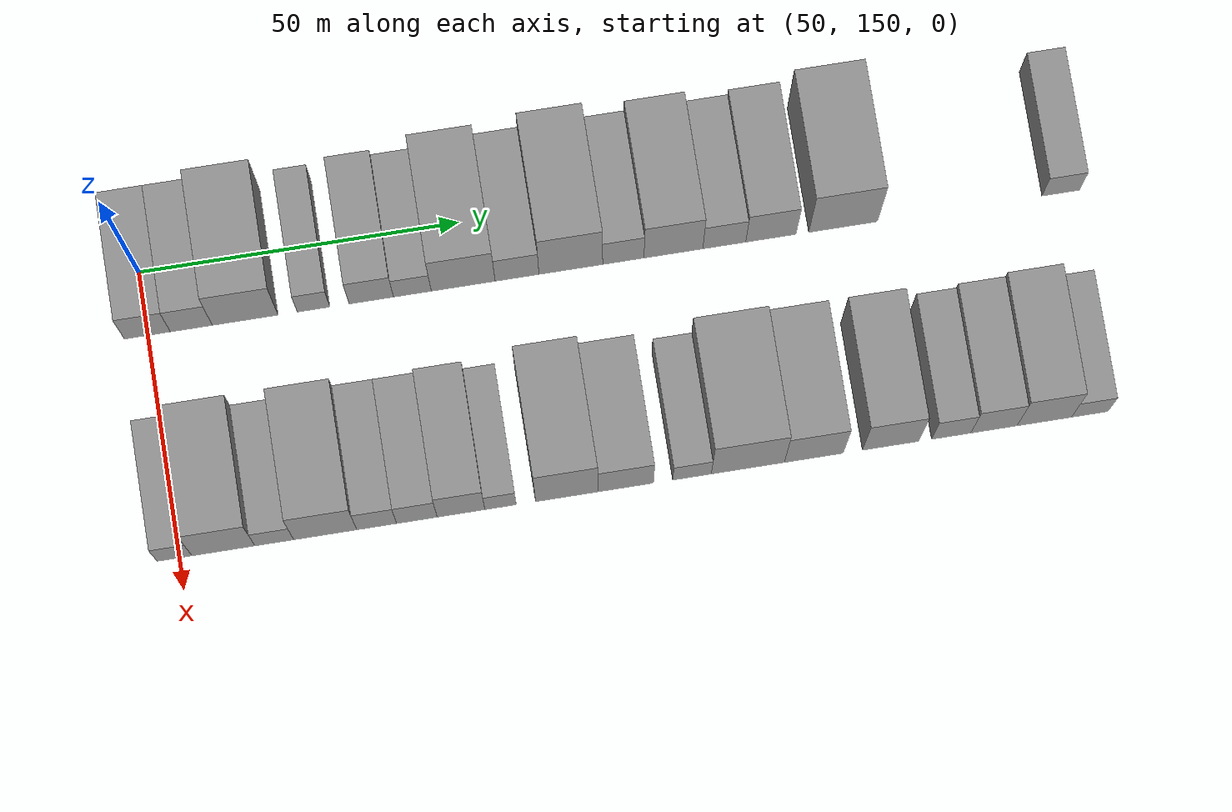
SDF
<sdf version="1.6">
 <world name="default">
  <model name="building_51">
   <static>1</static>
   <pose>50.0000 149.8587 0 0.000000 0.000000 0.000000</pose>
   <link name="link">
    <pose>0 0 7.50 0 0 0</pose>
    <collision name="collision"><geometry><box><size>20.0000 7.1651 15.0000</size></box></geometry></collision>
    <visual name="visual">
     <cast_shadows>0</cast_shadows>
     <geometry><box><size>20.0000 7.1651 15.0000</size></box></geometry>
     <material>
      <script>
       <uri>model://grey_wall/materials/scripts</uri>
       <uri>model://grey_wall/materials/textures</uri>
       <name>vrc/grey_wall</name>
      </script>
     </material>
    </visual>
   </link>
  </model>
  <model name="building_52">
   <static>1</static>
   <pose>50.0000 156.7073 0 0.000000 0.000000 0.000000</pose>
   <link name="link">
    <pose>0 0 7.50 0 0 0</pose>
    <collision name="collision"><geometry><box><size>20.0000 6.5321 15.0000</size></box></geometry></collision>
    <visual name="visual">
     <cast_shadows>0</cast_shadows>
     <geometry><box><size>20.0000 6.5321 15.0000</size></box></geometry>
     <material>
      <script>
       <uri>model://grey_wall/materials/scripts</uri>
       <uri>model://grey_wall/materials/textures</uri>
       <name>vrc/grey_wall</name>
      </script>
     </material>
    </visual>
   </link>
  </model>
  <model name="building_53">
   <static>1</static>
   <pose>50.0000 165.1053 0 0.000000 0.000000 0.000000</pose>
   <link name="link">
    <pose>0 0 10.50 0 0 0</pose>
    <collision name="collision"><geometry><box><size>20.0000 10.2638 21.0000</size></box></geometry></collision>
    <visual name="visual">
     <cast_shadows>0</cast_shadows>
     <geometry><box><size>20.0000 10.2638 21.0000</size></box></geometry>
     <material>
      <script>
       <uri>model://grey_wall/materials/scripts</uri>
       <uri>model://grey_wall/materials/textures</uri>
       <name>vrc/grey_wall</name>
      </script>
     </material>
    </visual>
   </link>
  </model>
  <model name="building_54">
   <static>1</static>
   <pose>50.0000 175.7789 0 0.000000 0.000000 0.000000</pose>
   <link name="link">
    <pose>0 0 6.00 0 0 0</pose>
    <collision name="collision"><geometry><box><size>20.0000 5.0835 12.0000</size></box></geometry></collision>
    <visual name="visual">
     <cast_shadows>0</cast_shadows>
     <geometry><box><size>20.0000 5.0835 12.0000</size></box></geometry>
     <material>
      <script>
       <uri>model://grey_wall/materials/scripts</uri>
       <uri>model://grey_wall/materials/textures</uri>
       <name>vrc/grey_wall</name>
      </script>
     </material>
    </visual>
   </link>
  </model>
  <model name="building_55">
   <static>1</static>
   <pose>50.0000 184.7896 0 0.000000 0.000000 0.000000</pose>
   <link name="link">
    <pose>0 0 7.50 0 0 0</pose>
    <collision name="collision"><geometry><box><size>20.0000 6.9380 15.0000</size></box></geometry></collision>
    <visual name="visual">
     <cast_shadows>0</cast_shadows>
     <geometry><box><size>20.0000 6.9380 15.0000</size></box></geometry>
     <material>
      <script>
       <uri>model://grey_wall/materials/scripts</uri>
       <uri>model://grey_wall/materials/textures</uri>
       <name>vrc/grey_wall</name>
      </script>
     </material>
    </visual>
   </link>
  </model>
  <model name="building_56">
   <static>1</static>
   <pose>50.0000 191.2132 0 0.000000 0.000000 0.000000</pose>
   <link name="link">
    <pose>0 0 6.00 0 0 0</pose>
    <collision name="collision"><geometry><box><size>20.0000 5.9091 12.0000</size></box></geometry></collision>
    <visual name="visual">
     <cast_shadows>0</cast_shadows>
     <geometry><box><size>20.0000 5.9091 12.0000</size></box></geometry>
     <material>
      <script>
       <uri>model://grey_wall/materials/scripts</uri>
       <uri>model://grey_wall/materials/textures</uri>
       <name>vrc/grey_wall</name>
      </script>
     </material>
    </visual>
   </link>
  </model>
  <model name="building_57">
   <static>1</static>
   <pose>50.0000 199.1576 0 0.000000 0.000000 0.000000</pose>
   <link name="link">
    <pose>0 0 10.50 0 0 0</pose>
    <collision name="collision"><geometry><box><size>20.0000 9.9797 21.0000</size></box></geometry></collision>
    <visual name="visual">
     <cast_shadows>0</cast_shadows>
     <geometry><box><size>20.0000 9.9797 21.0000</size></box></geometry>
     <material>
      <script>
       <uri>model://grey_wall/materials/scripts</uri>
       <uri>model://grey_wall/materials/textures</uri>
       <name>vrc/grey_wall</name>
      </script>
     </material>
    </visual>
   </link>
  </model>
  <model name="building_58">
   <static>1</static>
   <pose>50.0000 207.5786 0 0.000000 0.000000 0.000000</pose>
   <link name="link">
    <pose>0 0 7.50 0 0 0</pose>
    <collision name="collision"><geometry><box><size>20.0000 6.8624 15.0000</size></box></geometry></collision>
    <visual name="visual">
     <cast_shadows>0</cast_shadows>
     <geometry><box><size>20.0000 6.8624 15.0000</size></box></geometry>
     <material>
      <script>
       <uri>model://grey_wall/materials/scripts</uri>
       <uri>model://grey_wall/materials/textures</uri>
       <name>vrc/grey_wall</name>
      </script>
     </material>
    </visual>
   </link>
  </model>
  <model name="building_59">
   <static>1</static>
   <pose>50.0000 215.9971 0 0.000000 0.000000 0.000000</pose>
   <link name="link">
    <pose>0 0 12.00 0 0 0</pose>
    <collision name="collision"><geometry><box><size>20.0000 9.9745 24.0000</size></box></geometry></collision>
    <visual name="visual">
     <cast_shadows>0</cast_shadows>
     <geometry><box><size>20.0000 9.9745 24.0000</size></box></geometry>
     <material>
      <script>
       <uri>model://grey_wall/materials/scripts</uri>
       <uri>model://grey_wall/materials/textures</uri>
       <name>vrc/grey_wall</name>
      </script>
     </material>
    </visual>
   </link>
  </model>
  <model name="building_60">
   <static>1</static>
   <pose>50.0000 224.2173 0 0.000000 0.000000 0.000000</pose>
   <link name="link">
    <pose>0 0 7.50 0 0 0</pose>
    <collision name="collision"><geometry><box><size>20.0000 6.4659 15.0000</size></box></geometry></collision>
    <visual name="visual">
     <cast_shadows>0</cast_shadows>
     <geometry><box><size>20.0000 6.4659 15.0000</size></box></geometry>
     <material>
      <script>
       <uri>model://grey_wall/materials/scripts</uri>
       <uri>model://grey_wall/materials/textures</uri>
       <name>vrc/grey_wall</name>
      </script>
     </material>
    </visual>
   </link>
  </model>
  <model name="building_61">
   <static>1</static>
   <pose>50.0000 232.0735 0 0.000000 0.000000 0.000000</pose>
   <link name="link">
    <pose>0 0 10.50 0 0 0</pose>
    <collision name="collision"><geometry><box><size>20.0000 9.2464 21.0000</size></box></geometry></collision>
    <visual name="visual">
     <cast_shadows>0</cast_shadows>
     <geometry><box><size>20.0000 9.2464 21.0000</size></box></geometry>
     <material>
      <script>
       <uri>model://grey_wall/materials/scripts</uri>
       <uri>model://grey_wall/materials/textures</uri>
       <name>vrc/grey_wall</name>
      </script>
     </material>
    </visual>
   </link>
  </model>
  <model name="building_62">
   <static>1</static>
   <pose>50.0000 240.0651 0 0.000000 0.000000 0.000000</pose>
   <link name="link">
    <pose>0 0 7.50 0 0 0</pose>
    <collision name="collision"><geometry><box><size>20.0000 6.7368 15.0000</size></box></geometry></collision>
    <visual name="visual">
     <cast_shadows>0</cast_shadows>
     <geometry><box><size>20.0000 6.7368 15.0000</size></box></geometry>
     <material>
      <script>
       <uri>model://grey_wall/materials/scripts</uri>
       <uri>model://grey_wall/materials/textures</uri>
       <name>vrc/grey_wall</name>
      </script>
     </material>
    </visual>
   </link>
  </model>
  <model name="building_63">
   <static>1</static>
   <pose>50.0000 247.3832 0 0.000000 0.000000 0.000000</pose>
   <link name="link">
    <pose>0 0 9.00 0 0 0</pose>
    <collision name="collision"><geometry><box><size>20.0000 7.8994 18.0000</size></box></geometry></collision>
    <visual name="visual">
     <cast_shadows>0</cast_shadows>
     <geometry><box><size>20.0000 7.8994 18.0000</size></box></geometry>
     <material>
      <script>
       <uri>model://grey_wall/materials/scripts</uri>
       <uri>model://grey_wall/materials/textures</uri>
       <name>vrc/grey_wall</name>
      </script>
     </material>
    </visual>
   </link>
  </model>
  <model name="building_64">
   <static>1</static>
   <pose>50.0000 258.7395 0 0.000000 0.000000 0.000000</pose>
   <link name="link">
    <pose>0 0 12.00 0 0 0</pose>
    <collision name="collision"><geometry><box><size>20.0000 10.8131 24.0000</size></box></geometry></collision>
    <visual name="visual">
     <cast_shadows>0</cast_shadows>
     <geometry><box><size>20.0000 10.8131 24.0000</size></box></geometry>
     <material>
      <script>
       <uri>model://grey_wall/materials/scripts</uri>
       <uri>model://grey_wall/materials/textures</uri>
       <name>vrc/grey_wall</name>
      </script>
     </material>
    </visual>
   </link>
  </model>
  <model name="building_65">
   <static>1</static>
   <pose>50.0000 293.0234 0 0.000000 0.000000 0.000000</pose>
   <link name="link">
    <pose>0 0 6.00 0 0 0</pose>
    <collision name="collision"><geometry><box><size>20.0000 5.9182 12.0000</size></box></geometry></collision>
    <visual name="visual">
     <cast_shadows>0</cast_shadows>
     <geometry><box><size>20.0000 5.9182 12.0000</size></box></geometry>
     <material>
      <script>
       <uri>model://grey_wall/materials/scripts</uri>
       <uri>model://grey_wall/materials/textures</uri>
       <name>vrc/grey_wall</name>
      </script>
     </material>
    </visual>
   </link>
  </model>
  <model name="building_113">
   <static>1</static>
   <pose>85.0000 149.2277 0 0.000000 0.000000 0.000000</pose>
   <link name="link">
    <pose>0 0 6.00 0 0 0</pose>
    <collision name="collision"><geometry><box><size>20.0000 5.3686 12.0000</size></box></geometry></collision>
    <visual name="visual">
     <cast_shadows>0</cast_shadows>
     <geometry><box><size>20.0000 5.3686 12.0000</size></box></geometry>
     <material>
      <script>
       <uri>model://grey_wall/materials/scripts</uri>
       <uri>model://grey_wall/materials/textures</uri>
       <name>vrc/grey_wall</name>
      </script>
     </material>
    </visual>
   </link>
  </model>
  <model name="building_114">
   <static>1</static>
   <pose>85.0000 156.7745 0 0.000000 0.000000 0.000000</pose>
   <link name="link">
    <pose>0 0 10.50 0 0 0</pose>
    <collision name="collision"><geometry><box><size>20.0000 9.7251 21.0000</size></box></geometry></collision>
    <visual name="visual">
     <cast_shadows>0</cast_shadows>
     <geometry><box><size>20.0000 9.7251 21.0000</size></box></geometry>
     <material>
      <script>
       <uri>model://grey_wall/materials/scripts</uri>
       <uri>model://grey_wall/materials/textures</uri>
       <name>vrc/grey_wall</name>
      </script>
     </material>
    </visual>
   </link>
  </model>
  <model name="building_115">
   <static>1</static>
   <pose>85.0000 164.6234 0 0.000000 0.000000 0.000000</pose>
   <link name="link">
    <pose>0 0 6.00 0 0 0</pose>
    <collision name="collision"><geometry><box><size>20.0000 5.9726 12.0000</size></box></geometry></collision>
    <visual name="visual">
     <cast_shadows>0</cast_shadows>
     <geometry><box><size>20.0000 5.9726 12.0000</size></box></geometry>
     <material>
      <script>
       <uri>model://grey_wall/materials/scripts</uri>
       <uri>model://grey_wall/materials/textures</uri>
       <name>vrc/grey_wall</name>
      </script>
     </material>
    </visual>
   </link>
  </model>
  <model name="building_116">
   <static>1</static>
   <pose>85.0000 172.4846 0 0.000000 0.000000 0.000000</pose>
   <link name="link">
    <pose>0 0 10.50 0 0 0</pose>
    <collision name="collision"><geometry><box><size>20.0000 9.7497 21.0000</size></box></geometry></collision>
    <visual name="visual">
     <cast_shadows>0</cast_shadows>
     <geometry><box><size>20.0000 9.7497 21.0000</size></box></geometry>
     <material>
      <script>
       <uri>model://grey_wall/materials/scripts</uri>
       <uri>model://grey_wall/materials/textures</uri>
       <name>vrc/grey_wall</name>
      </script>
     </material>
    </visual>
   </link>
  </model>
  <model name="building_117">
   <static>1</static>
   <pose>85.0000 180.4429 0 0.000000 0.000000 0.000000</pose>
   <link name="link">
    <pose>0 0 7.50 0 0 0</pose>
    <collision name="collision"><geometry><box><size>20.0000 6.1670 15.0000</size></box></geometry></collision>
    <visual name="visual">
     <cast_shadows>0</cast_shadows>
     <geometry><box><size>20.0000 6.1670 15.0000</size></box></geometry>
     <material>
      <script>
       <uri>model://grey_wall/materials/scripts</uri>
       <uri>model://grey_wall/materials/textures</uri>
       <name>vrc/grey_wall</name>
      </script>
     </material>
    </visual>
   </link>
  </model>
  <model name="building_118">
   <static>1</static>
   <pose>85.0000 186.6596 0 0.000000 0.000000 0.000000</pose>
   <link name="link">
    <pose>0 0 7.50 0 0 0</pose>
    <collision name="collision"><geometry><box><size>20.0000 6.2663 15.0000</size></box></geometry></collision>
    <visual name="visual">
     <cast_shadows>0</cast_shadows>
     <geometry><box><size>20.0000 6.2663 15.0000</size></box></geometry>
     <material>
      <script>
       <uri>model://grey_wall/materials/scripts</uri>
       <uri>model://grey_wall/materials/textures</uri>
       <name>vrc/grey_wall</name>
      </script>
     </material>
    </visual>
   </link>
  </model>
  <model name="building_119">
   <static>1</static>
   <pose>85.0000 193.4872 0 0.000000 0.000000 0.000000</pose>
   <link name="link">
    <pose>0 0 9.00 0 0 0</pose>
    <collision name="collision"><geometry><box><size>20.0000 7.3888 18.0000</size></box></geometry></collision>
    <visual name="visual">
     <cast_shadows>0</cast_shadows>
     <geometry><box><size>20.0000 7.3888 18.0000</size></box></geometry>
     <material>
      <script>
       <uri>model://grey_wall/materials/scripts</uri>
       <uri>model://grey_wall/materials/textures</uri>
       <name>vrc/grey_wall</name>
      </script>
     </material>
    </visual>
   </link>
  </model>
  <model name="building_120">
   <static>1</static>
   <pose>85.0000 199.6063 0 0.000000 0.000000 0.000000</pose>
   <link name="link">
    <pose>0 0 6.00 0 0 0</pose>
    <collision name="collision"><geometry><box><size>20.0000 4.8495 12.0000</size></box></geometry></collision>
    <visual name="visual">
     <cast_shadows>0</cast_shadows>
     <geometry><box><size>20.0000 4.8495 12.0000</size></box></geometry>
     <material>
      <script>
       <uri>model://grey_wall/materials/scripts</uri>
       <uri>model://grey_wall/materials/textures</uri>
       <name>vrc/grey_wall</name>
      </script>
     </material>
    </visual>
   </link>
  </model>
  <model name="building_121">
   <static>1</static>
   <pose>85.0000 209.8693 0 0.000000 0.000000 0.000000</pose>
   <link name="link">
    <pose>0 0 12.00 0 0 0</pose>
    <collision name="collision"><geometry><box><size>20.0000 9.6765 24.0000</size></box></geometry></collision>
    <visual name="visual">
     <cast_shadows>0</cast_shadows>
     <geometry><box><size>20.0000 9.6765 24.0000</size></box></geometry>
     <material>
      <script>
       <uri>model://grey_wall/materials/scripts</uri>
       <uri>model://grey_wall/materials/textures</uri>
       <name>vrc/grey_wall</name>
      </script>
     </material>
    </visual>
   </link>
  </model>
  <model name="building_122">
   <static>1</static>
   <pose>85.0000 219.0020 0 0.000000 0.000000 0.000000</pose>
   <link name="link">
    <pose>0 0 9.00 0 0 0</pose>
    <collision name="collision"><geometry><box><size>20.0000 8.5888 18.0000</size></box></geometry></collision>
    <visual name="visual">
     <cast_shadows>0</cast_shadows>
     <geometry><box><size>20.0000 8.5888 18.0000</size></box></geometry>
     <material>
      <script>
       <uri>model://grey_wall/materials/scripts</uri>
       <uri>model://grey_wall/materials/textures</uri>
       <name>vrc/grey_wall</name>
      </script>
     </material>
    </visual>
   </link>
  </model>
  <model name="building_123">
   <static>1</static>
   <pose>85.0000 229.2820 0 0.000000 0.000000 0.000000</pose>
   <link name="link">
    <pose>0 0 6.00 0 0 0</pose>
    <collision name="collision"><geometry><box><size>20.0000 5.9712 12.0000</size></box></geometry></collision>
    <visual name="visual">
     <cast_shadows>0</cast_shadows>
     <geometry><box><size>20.0000 5.9712 12.0000</size></box></geometry>
     <material>
      <script>
       <uri>model://grey_wall/materials/scripts</uri>
       <uri>model://grey_wall/materials/textures</uri>
       <name>vrc/grey_wall</name>
      </script>
     </material>
    </visual>
   </link>
  </model>
  <model name="building_124">
   <static>1</static>
   <pose>85.0000 237.9570 0 0.000000 0.000000 0.000000</pose>
   <link name="link">
    <pose>0 0 12.00 0 0 0</pose>
    <collision name="collision"><geometry><box><size>20.0000 11.3788 24.0000</size></box></geometry></collision>
    <visual name="visual">
     <cast_shadows>0</cast_shadows>
     <geometry><box><size>20.0000 11.3788 24.0000</size></box></geometry>
     <material>
      <script>
       <uri>model://grey_wall/materials/scripts</uri>
       <uri>model://grey_wall/materials/textures</uri>
       <name>vrc/grey_wall</name>
      </script>
     </material>
    </visual>
   </link>
  </model>
  <model name="building_125">
   <static>1</static>
   <pose>85.0000 248.2218 0 0.000000 0.000000 0.000000</pose>
   <link name="link">
    <pose>0 0 10.50 0 0 0</pose>
    <collision name="collision"><geometry><box><size>20.0000 9.1507 21.0000</size></box></geometry></collision>
    <visual name="visual">
     <cast_shadows>0</cast_shadows>
     <geometry><box><size>20.0000 9.1507 21.0000</size></box></geometry>
     <material>
      <script>
       <uri>model://grey_wall/materials/scripts</uri>
       <uri>model://grey_wall/materials/textures</uri>
       <name>vrc/grey_wall</name>
      </script>
     </material>
    </visual>
   </link>
  </model>
  <model name="building_126">
   <static>1</static>
   <pose>85.0000 260.1811 0 0.000000 0.000000 0.000000</pose>
   <link name="link">
    <pose>0 0 10.50 0 0 0</pose>
    <collision name="collision"><geometry><box><size>20.0000 8.7679 21.0000</size></box></geometry></collision>
    <visual name="visual">
     <cast_shadows>0</cast_shadows>
     <geometry><box><size>20.0000 8.7679 21.0000</size></box></geometry>
     <material>
      <script>
       <uri>model://grey_wall/materials/scripts</uri>
       <uri>model://grey_wall/materials/textures</uri>
       <name>vrc/grey_wall</name>
      </script>
     </material>
    </visual>
   </link>
  </model>
  <model name="building_127">
   <static>1</static>
   <pose>85.0000 269.6247 0 0.000000 0.000000 0.000000</pose>
   <link name="link">
    <pose>0 0 7.50 0 0 0</pose>
    <collision name="collision"><geometry><box><size>20.0000 6.1192 15.0000</size></box></geometry></collision>
    <visual name="visual">
     <cast_shadows>0</cast_shadows>
     <geometry><box><size>20.0000 6.1192 15.0000</size></box></geometry>
     <material>
      <script>
       <uri>model://grey_wall/materials/scripts</uri>
       <uri>model://grey_wall/materials/textures</uri>
       <name>vrc/grey_wall</name>
      </script>
     </material>
    </visual>
   </link>
  </model>
  <model name="building_128">
   <static>1</static>
   <pose>85.0000 276.2935 0 0.000000 0.000000 0.000000</pose>
   <link name="link">
    <pose>0 0 9.00 0 0 0</pose>
    <collision name="collision"><geometry><box><size>20.0000 7.2185 18.0000</size></box></geometry></collision>
    <visual name="visual">
     <cast_shadows>0</cast_shadows>
     <geometry><box><size>20.0000 7.2185 18.0000</size></box></geometry>
     <material>
      <script>
       <uri>model://grey_wall/materials/scripts</uri>
       <uri>model://grey_wall/materials/textures</uri>
       <name>vrc/grey_wall</name>
      </script>
     </material>
    </visual>
   </link>
  </model>
  <model name="building_129">
   <static>1</static>
   <pose>85.0000 284.1583 0 0.000000 0.000000 0.000000</pose>
   <link name="link">
    <pose>0 0 10.50 0 0 0</pose>
    <collision name="collision"><geometry><box><size>20.0000 8.5111 21.0000</size></box></geometry></collision>
    <visual name="visual">
     <cast_shadows>0</cast_shadows>
     <geometry><box><size>20.0000 8.5111 21.0000</size></box></geometry>
     <material>
      <script>
       <uri>model://grey_wall/materials/scripts</uri>
       <uri>model://grey_wall/materials/textures</uri>
       <name>vrc/grey_wall</name>
      </script>
     </material>
    </visual>
   </link>
  </model>
  <model name="building_130">
   <static>1</static>
   <pose>85.0000 291.2730 0 0.000000 0.000000 0.000000</pose>
   <link name="link">
    <pose>0 0 6.00 0 0 0</pose>
    <collision name="collision"><geometry><box><size>20.0000 5.7181 12.0000</size></box></geometry></collision>
    <visual name="visual">
     <cast_shadows>0</cast_shadows>
     <geometry><box><size>20.0000 5.7181 12.0000</size></box></geometry>
     <material>
      <script>
       <uri>model://grey_wall/materials/scripts</uri>
       <uri>model://grey_wall/materials/textures</uri>
       <name>vrc/grey_wall</name>
      </script>
     </material>
    </visual>
   </link>
  </model>
 </world>
</sdf>
